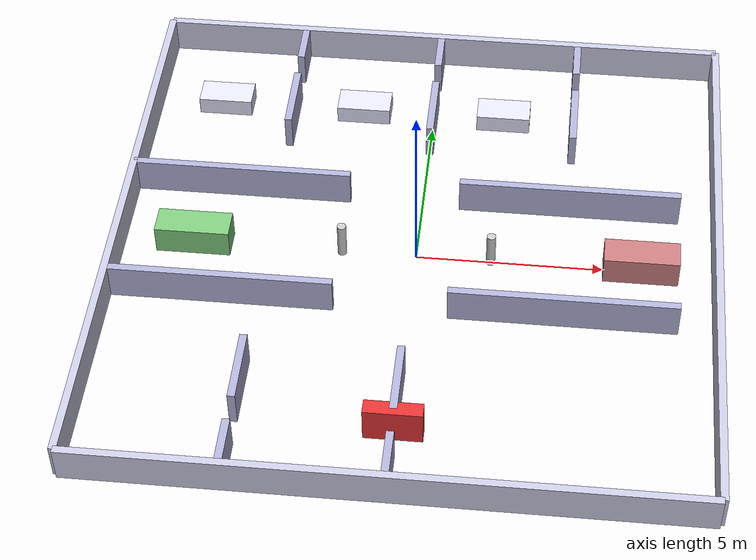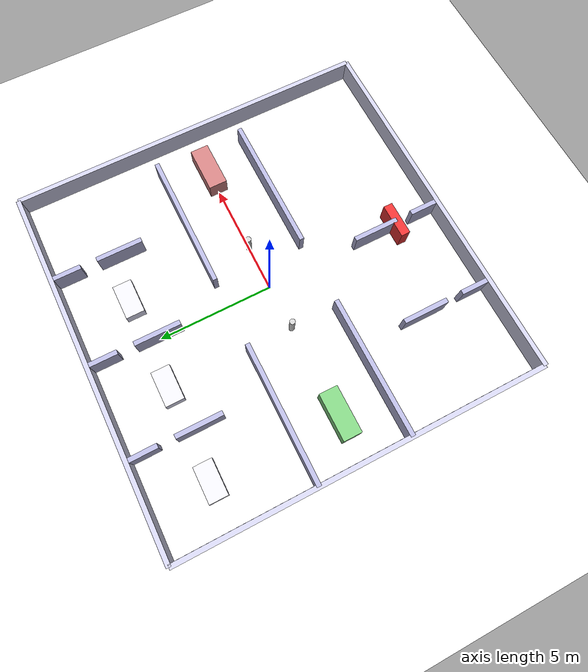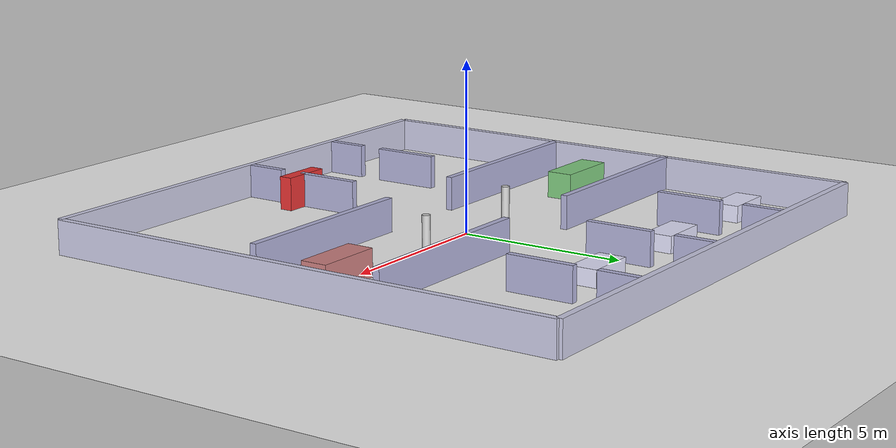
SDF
<?xml version="1.0"?>
<sdf version="1.6">
  <world name="hospital">

    <light name="sun" type="directional">
      <cast_shadows>true</cast_shadows>
      <pose>0 0 10 0 0 0</pose>
      <diffuse>0.8 0.8 0.8 1</diffuse>
      <specular>0.2 0.2 0.2 1</specular>
      <attenuation>
        <range>1000</range>
        <constant>0.9</constant>
        <linear>0.01</linear>
        <quadratic>0.001</quadratic>
      </attenuation>
      <direction>-0.5 0.1 -0.9</direction>
    </light>

    <!-- Ground -->
    <model name="ground">
      <static>true</static>
      <link name="link">
        <collision name="col">
          <geometry><plane><normal>0 0 1</normal><size>100 100</size></plane></geometry>
        </collision>
        <visual name="vis">
          <geometry><plane><normal>0 0 1</normal><size>100 100</size></plane></geometry>
          <material><ambient>0.95 0.95 0.95 1</ambient></material>
        </visual>
      </link>
    </model>

    <!-- OUTER WALLS -->
    <model name="outer_north">
      <static>true</static><pose>0 8 0.5 0 0 0</pose>
      <link name="link">
        <collision name="col"><geometry><box><size>16 0.2 1</size></box></geometry></collision>
        <visual name="vis"><geometry><box><size>16 0.2 1</size></box></geometry><material><ambient>0.8 0.8 0.9 1</ambient></material></visual>
      </link>
    </model>

    <model name="outer_south">
      <static>true</static><pose>0 -8 0.5 0 0 0</pose>
      <link name="link">
        <collision name="col"><geometry><box><size>16 0.2 1</size></box></geometry></collision>
        <visual name="vis"><geometry><box><size>16 0.2 1</size></box></geometry><material><ambient>0.8 0.8 0.9 1</ambient></material></visual>
      </link>
    </model>

    <model name="outer_east">
      <static>true</static><pose>8 0 0.5 0 0 0</pose>
      <link name="link">
        <collision name="col"><geometry><box><size>0.2 16 1</size></box></geometry></collision>
        <visual name="vis"><geometry><box><size>0.2 16 1</size></box></geometry><material><ambient>0.8 0.8 0.9 1</ambient></material></visual>
      </link>
    </model>

    <model name="outer_west">
      <static>true</static><pose>-8 0 0.5 0 0 0</pose>
      <link name="link">
        <collision name="col"><geometry><box><size>0.2 16 1</size></box></geometry></collision>
        <visual name="vis"><geometry><box><size>0.2 16 1</size></box></geometry><material><ambient>0.8 0.8 0.9 1</ambient></material></visual>
      </link>
    </model>

    <!-- MAIN CORRIDOR WALLS (horizontal, center) -->
    <!-- North corridor wall with door gaps -->
    <model name="corr_n_left">
      <static>true</static><pose>-5 2 0.5 0 0 0</pose>
      <link name="link">
        <collision name="col"><geometry><box><size>6 0.2 1</size></box></geometry></collision>
        <visual name="vis"><geometry><box><size>6 0.2 1</size></box></geometry><material><ambient>0.7 0.7 0.85 1</ambient></material></visual>
      </link>
    </model>

    <model name="corr_n_right">
      <static>true</static><pose>4 2 0.5 0 0 0</pose>
      <link name="link">
        <collision name="col"><geometry><box><size>6 0.2 1</size></box></geometry></collision>
        <visual name="vis"><geometry><box><size>6 0.2 1</size></box></geometry><material><ambient>0.7 0.7 0.85 1</ambient></material></visual>
      </link>
    </model>

    <!-- South corridor wall with door gaps -->
    <model name="corr_s_left">
      <static>true</static><pose>-5 -2 0.5 0 0 0</pose>
      <link name="link">
        <collision name="col"><geometry><box><size>6 0.2 1</size></box></geometry></collision>
        <visual name="vis"><geometry><box><size>6 0.2 1</size></box></geometry><material><ambient>0.7 0.7 0.85 1</ambient></material></visual>
      </link>
    </model>

    <model name="corr_s_right">
      <static>true</static><pose>4 -2 0.5 0 0 0</pose>
      <link name="link">
        <collision name="col"><geometry><box><size>6 0.2 1</size></box></geometry></collision>
        <visual name="vis"><geometry><box><size>6 0.2 1</size></box></geometry><material><ambient>0.7 0.7 0.85 1</ambient></material></visual>
      </link>
    </model>

    <!-- ROOM DIVIDERS NORTH (with door gaps) -->
    <!-- Room N1 divider -->
    <model name="div_n1_a">
      <static>true</static><pose>-4 5 0.5 0 0 0</pose>
      <link name="link">
        <collision name="col"><geometry><box><size>0.2 2 1</size></box></geometry></collision>
        <visual name="vis"><geometry><box><size>0.2 2 1</size></box></geometry><material><ambient>0.7 0.7 0.85 1</ambient></material></visual>
      </link>
    </model>
    <model name="div_n1_b">
      <static>true</static><pose>-4 7.3 0.5 0 0 0</pose>
      <link name="link">
        <collision name="col"><geometry><box><size>0.2 1.2 1</size></box></geometry></collision>
        <visual name="vis"><geometry><box><size>0.2 1.2 1</size></box></geometry><material><ambient>0.7 0.7 0.85 1</ambient></material></visual>
      </link>
    </model>

    <!-- Room N2 divider -->
    <model name="div_n2_a">
      <static>true</static><pose>0 5 0.5 0 0 0</pose>
      <link name="link">
        <collision name="col"><geometry><box><size>0.2 2 1</size></box></geometry></collision>
        <visual name="vis"><geometry><box><size>0.2 2 1</size></box></geometry><material><ambient>0.7 0.7 0.85 1</ambient></material></visual>
      </link>
    </model>
    <model name="div_n2_b">
      <static>true</static><pose>0 7.3 0.5 0 0 0</pose>
      <link name="link">
        <collision name="col"><geometry><box><size>0.2 1.2 1</size></box></geometry></collision>
        <visual name="vis"><geometry><box><size>0.2 1.2 1</size></box></geometry><material><ambient>0.7 0.7 0.85 1</ambient></material></visual>
      </link>
    </model>

    <!-- Room N3 divider -->
    <model name="div_n3_a">
      <static>true</static><pose>4 5 0.5 0 0 0</pose>
      <link name="link">
        <collision name="col"><geometry><box><size>0.2 2 1</size></box></geometry></collision>
        <visual name="vis"><geometry><box><size>0.2 2 1</size></box></geometry><material><ambient>0.7 0.7 0.85 1</ambient></material></visual>
      </link>
    </model>
    <model name="div_n3_b">
      <static>true</static><pose>4 7.3 0.5 0 0 0</pose>
      <link name="link">
        <collision name="col"><geometry><box><size>0.2 1.2 1</size></box></geometry></collision>
        <visual name="vis"><geometry><box><size>0.2 1.2 1</size></box></geometry><material><ambient>0.7 0.7 0.85 1</ambient></material></visual>
      </link>
    </model>

    <!-- ROOM DIVIDERS SOUTH -->
    <model name="div_s1_a">
      <static>true</static><pose>-4 -5 0.5 0 0 0</pose>
      <link name="link">
        <collision name="col"><geometry><box><size>0.2 2 1</size></box></geometry></collision>
        <visual name="vis"><geometry><box><size>0.2 2 1</size></box></geometry><material><ambient>0.7 0.7 0.85 1</ambient></material></visual>
      </link>
    </model>
    <model name="div_s1_b">
      <static>true</static><pose>-4 -7.3 0.5 0 0 0</pose>
      <link name="link">
        <collision name="col"><geometry><box><size>0.2 1.2 1</size></box></geometry></collision>
        <visual name="vis"><geometry><box><size>0.2 1.2 1</size></box></geometry><material><ambient>0.7 0.7 0.85 1</ambient></material></visual>
      </link>
    </model>

    <model name="div_s2_a">
      <static>true</static><pose>0 -5 0.5 0 0 0</pose>
      <link name="link">
        <collision name="col"><geometry><box><size>0.2 2 1</size></box></geometry></collision>
        <visual name="vis"><geometry><box><size>0.2 2 1</size></box></geometry><material><ambient>0.7 0.7 0.85 1</ambient></material></visual>
      </link>
    </model>
    <model name="div_s2_b">
      <static>true</static><pose>0 -7.3 0.5 0 0 0</pose>
      <link name="link">
        <collision name="col"><geometry><box><size>0.2 1.2 1</size></box></geometry></collision>
        <visual name="vis"><geometry><box><size>0.2 1.2 1</size></box></geometry><material><ambient>0.7 0.7 0.85 1</ambient></material></visual>
      </link>
    </model>

    <!-- BEDS -->
    <model name="bed1">
      <static>true</static><pose>-6 5.5 0.3 0 0 0</pose>
      <link name="link">
        <collision name="col"><geometry><box><size>1.5 0.8 0.5</size></box></geometry></collision>
        <visual name="vis"><geometry><box><size>1.5 0.8 0.5</size></box></geometry><material><ambient>0.9 0.9 1.0 1</ambient></material></visual>
      </link>
    </model>

    <model name="bed2">
      <static>true</static><pose>-2 5.5 0.3 0 0 0</pose>
      <link name="link">
        <collision name="col"><geometry><box><size>1.5 0.8 0.5</size></box></geometry></collision>
        <visual name="vis"><geometry><box><size>1.5 0.8 0.5</size></box></geometry><material><ambient>0.9 0.9 1.0 1</ambient></material></visual>
      </link>
    </model>

    <model name="bed3">
      <static>true</static><pose>2 5.5 0.3 0 0 0</pose>
      <link name="link">
        <collision name="col"><geometry><box><size>1.5 0.8 0.5</size></box></geometry></collision>
        <visual name="vis"><geometry><box><size>1.5 0.8 0.5</size></box></geometry><material><ambient>0.9 0.9 1.0 1</ambient></material></visual>
      </link>
    </model>

    <!-- NURSE STATION -->
    <model name="nurse_desk">
      <static>true</static><pose>-6 0 0.4 0 0 0</pose>
      <link name="link">
        <collision name="col"><geometry><box><size>2 0.8 0.8</size></box></geometry></collision>
        <visual name="vis"><geometry><box><size>2 0.8 0.8</size></box></geometry><material><ambient>0.5 0.8 0.5 1</ambient></material></visual>
      </link>
    </model>

    <!-- RECEPTION -->
    <model name="reception">
      <static>true</static><pose>6 0 0.4 0 0 0</pose>
      <link name="link">
        <collision name="col"><geometry><box><size>2 0.8 0.8</size></box></geometry></collision>
        <visual name="vis"><geometry><box><size>2 0.8 0.8</size></box></geometry><material><ambient>0.8 0.5 0.5 1</ambient></material></visual>
      </link>
    </model>

    <!-- PILLARS in corridor -->
    <model name="pillar1">
      <static>true</static><pose>-2 0 0.5 0 0 0</pose>
      <link name="link">
        <collision name="col"><geometry><cylinder><radius>0.12</radius><length>1</length></cylinder></geometry></collision>
        <visual name="vis"><geometry><cylinder><radius>0.12</radius><length>1</length></cylinder></geometry><material><ambient>0.8 0.8 0.8 1</ambient></material></visual>
      </link>
    </model>

    <model name="pillar2">
      <static>true</static><pose>2 0 0.5 0 0 0</pose>
      <link name="link">
        <collision name="col"><geometry><cylinder><radius>0.12</radius><length>1</length></cylinder></geometry></collision>
        <visual name="vis"><geometry><cylinder><radius>0.12</radius><length>1</length></cylinder></geometry><material><ambient>0.8 0.8 0.8 1</ambient></material></visual>
      </link>
    </model>

    <!-- BLOCKED EMERGENCY EXIT -->
    <model name="emergency_block">
      <static>true</static><pose>0 -6 0.5 0 0 0</pose>
      <link name="link">
        <collision name="col"><geometry><box><size>1.5 0.4 1</size></box></geometry></collision>
        <visual name="vis"><geometry><box><size>1.5 0.4 1</size></box></geometry><material><ambient>0.9 0.2 0.2 1</ambient></material></visual>
      </link>
    </model>

  </world>
</sdf>
